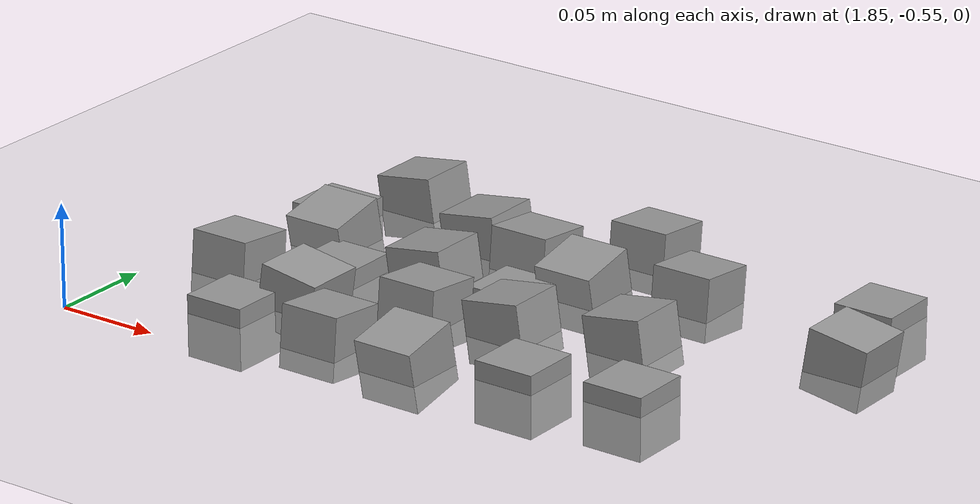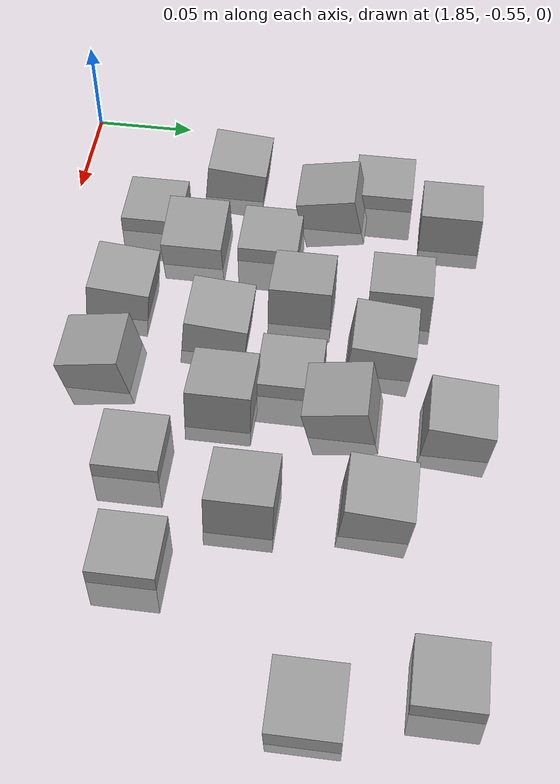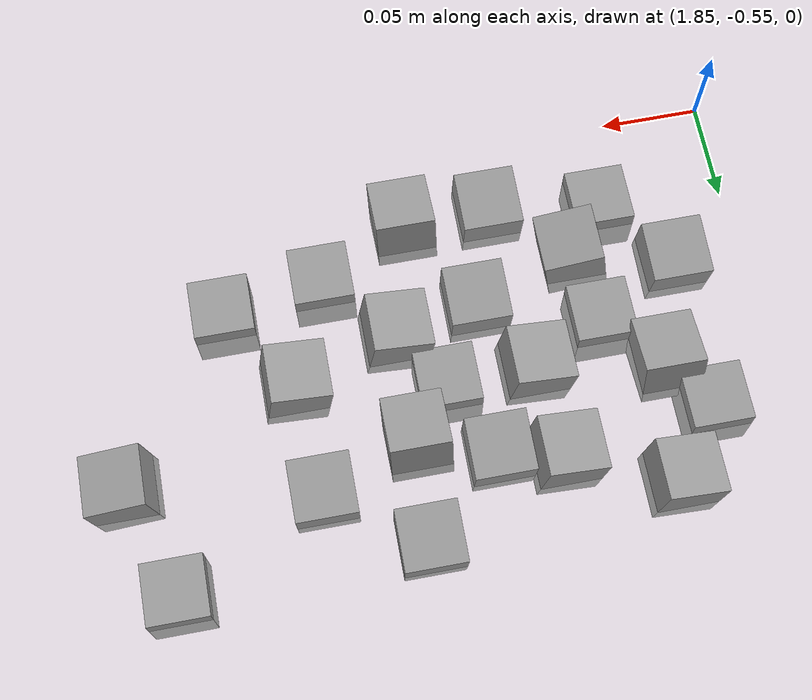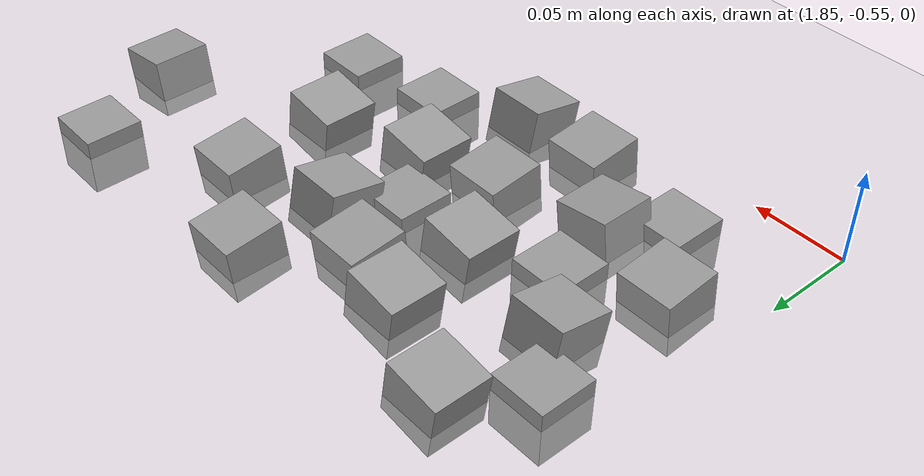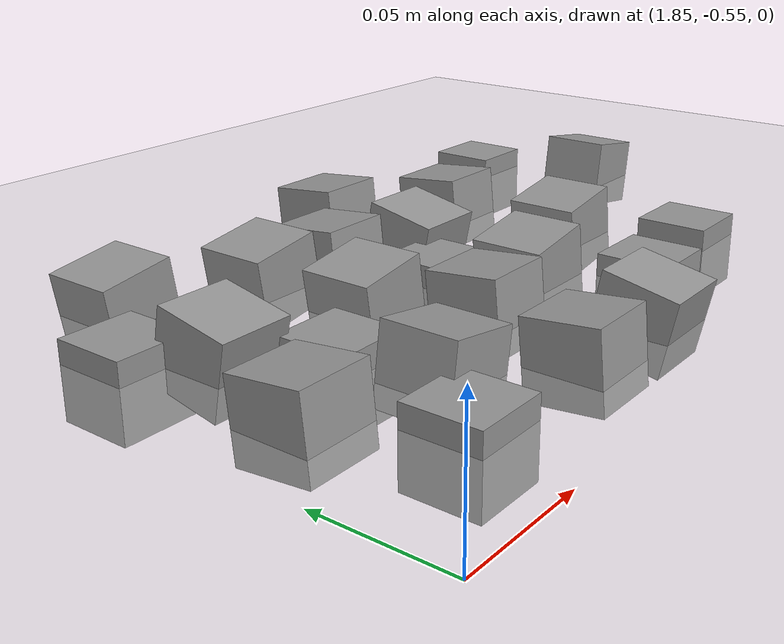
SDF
<sdf version="1.7">
 <world name="default">
  <model name="ground_plane">
   <static>1</static>
   <link name="link">
    <collision name="collision">
     <geometry><plane><normal>0 0 1</normal><size>100 100</size></plane></geometry>
     <surface><friction><ode><mu>100</mu><mu2>50</mu2></ode></friction></surface>
    </collision>
    <visual name="visual">
     <cast_shadows>0</cast_shadows>
     <geometry><plane><normal>0 0 1</normal><size>100 100</size></plane></geometry>
     <material>
      <script><uri>file://media/materials/scripts/gazebo.material</uri><name>Gazebo/Grey</name></script>
     </material>
    </visual>
   </link>
  </model>
  <model name="stone_road_2">
   <link name="link_0_clone_11">
    <inertial>
     <mass>1</mass>
     <inertia>
      <ixx>0.166667</ixx>
      <ixy>0</ixy>
      <ixz>0</ixz>
      <iyy>0.166667</iyy>
      <iyz>0</iyz>
      <izz>0.166667</izz>
     </inertia>
    </inertial>
    <pose>0.007758 0.071496 0.003778 0.2 -0 0</pose>
    <kinematic>1</kinematic>
    <visual name="visual">
     <geometry><box><size>0.03 0.03 0.03</size></box></geometry>
     <material>
      <lighting>1</lighting>
      <script><uri>file://media/materials/scripts/gazebo.material</uri><name>Gazebo/Grey</name></script>
      <shader type="pixel"><normal_map>__default__</normal_map></shader>
      <ambient>0.3 0.3 0.3 1</ambient>
      <diffuse>0.7 0.7 0.7 1</diffuse>
      <specular>0.01 0.01 0.01 1</specular>
      <emissive>0 0 0 1</emissive>
     </material>
    </visual>
    <collision name="collision">
     <geometry><box><size>0.03 0.03 0.03</size></box></geometry>
     <surface>
      <friction>
       <ode><mu>1</mu><mu2>1</mu2><fdir1>0 0 0</fdir1><slip1>0</slip1><slip2>0</slip2></ode>
       <torsional>
        <coefficient>1</coefficient>
        <patch_radius>0</patch_radius>
        <surface_radius>0</surface_radius>
        <use_patch_radius>1</use_patch_radius>
        <ode><slip>0</slip></ode>
       </torsional>
      </friction>
      <bounce><restitution_coefficient>0</restitution_coefficient><threshold>1e+06</threshold></bounce>
      <contact>
       <collide_without_contact>0</collide_without_contact>
       <collide_without_contact_bitmask>1</collide_without_contact_bitmask>
       <collide_bitmask>1</collide_bitmask>
       <ode>
        <soft_cfm>0</soft_cfm>
        <soft_erp>0.2</soft_erp>
        <kp>1e+13</kp>
        <kd>1</kd>
        <max_vel>0.01</max_vel>
        <min_depth>0</min_depth>
       </ode>
       <bullet>
        <split_impulse>1</split_impulse>
        <split_impulse_penetration_threshold>-0.01</split_impulse_penetration_threshold>
        <soft_cfm>0</soft_cfm>
        <soft_erp>0.2</soft_erp>
        <kp>1e+13</kp>
        <kd>1</kd>
       </bullet>
      </contact>
     </surface>
    </collision>
   </link>
   <link name="link_0_clone_2_clone_1">
    <inertial>
     <mass>1</mass>
     <inertia>
      <ixx>0.166667</ixx>
      <ixy>0</ixy>
      <ixz>0</ixz>
      <iyy>0.166667</iyy>
      <iyz>0</iyz>
      <izz>0.166667</izz>
     </inertia>
    </inertial>
    <pose>0.041447 0.006316 0.003778 0 0.15 0</pose>
    <kinematic>1</kinematic>
    <visual name="visual">
     <geometry><box><size>0.03 0.03 0.03</size></box></geometry>
     <material>
      <lighting>1</lighting>
      <script><uri>file://media/materials/scripts/gazebo.material</uri><name>Gazebo/Grey</name></script>
      <shader type="pixel"><normal_map>__default__</normal_map></shader>
      <ambient>0.3 0.3 0.3 1</ambient>
      <diffuse>0.7 0.7 0.7 1</diffuse>
      <specular>0.01 0.01 0.01 1</specular>
      <emissive>0 0 0 1</emissive>
     </material>
    </visual>
    <collision name="collision">
     <geometry><box><size>0.03 0.03 0.03</size></box></geometry>
     <surface>
      <friction>
       <ode><mu>1</mu><mu2>1</mu2><fdir1>0 0 0</fdir1><slip1>0</slip1><slip2>0</slip2></ode>
       <torsional>
        <coefficient>1</coefficient>
        <patch_radius>0</patch_radius>
        <surface_radius>0</surface_radius>
        <use_patch_radius>1</use_patch_radius>
        <ode><slip>0</slip></ode>
       </torsional>
      </friction>
      <bounce><restitution_coefficient>0</restitution_coefficient><threshold>1e+06</threshold></bounce>
      <contact>
       <collide_without_contact>0</collide_without_contact>
       <collide_without_contact_bitmask>1</collide_without_contact_bitmask>
       <collide_bitmask>1</collide_bitmask>
       <ode>
        <soft_cfm>0</soft_cfm>
        <soft_erp>0.2</soft_erp>
        <kp>1e+13</kp>
        <kd>1</kd>
        <max_vel>0.01</max_vel>
        <min_depth>0</min_depth>
       </ode>
       <bullet>
        <split_impulse>1</split_impulse>
        <split_impulse_penetration_threshold>-0.01</split_impulse_penetration_threshold>
        <soft_cfm>0</soft_cfm>
        <soft_erp>0.2</soft_erp>
        <kp>1e+13</kp>
        <kd>1</kd>
       </bullet>
      </contact>
     </surface>
    </collision>
   </link>
   <link name="link_0_clone_2_clone_2">
    <inertial>
     <mass>1</mass>
     <inertia>
      <ixx>0.166667</ixx>
      <ixy>0</ixy>
      <ixz>0</ixz>
      <iyy>0.166667</iyy>
      <iyz>0</iyz>
      <izz>0.166667</izz>
     </inertia>
    </inertial>
    <pose>0.066563 0.110568 0.003778 0 -0.15 0</pose>
    <kinematic>1</kinematic>
    <visual name="visual">
     <geometry><box><size>0.03 0.03 0.03</size></box></geometry>
     <material>
      <lighting>1</lighting>
      <script><uri>file://media/materials/scripts/gazebo.material</uri><name>Gazebo/Grey</name></script>
      <shader type="pixel"><normal_map>__default__</normal_map></shader>
      <ambient>0.3 0.3 0.3 1</ambient>
      <diffuse>0.7 0.7 0.7 1</diffuse>
      <specular>0.01 0.01 0.01 1</specular>
      <emissive>0 0 0 1</emissive>
     </material>
    </visual>
    <collision name="collision">
     <geometry><box><size>0.03 0.03 0.03</size></box></geometry>
     <surface>
      <friction>
       <ode><mu>1</mu><mu2>1</mu2><fdir1>0 0 0</fdir1><slip1>0</slip1><slip2>0</slip2></ode>
       <torsional>
        <coefficient>1</coefficient>
        <patch_radius>0</patch_radius>
        <surface_radius>0</surface_radius>
        <use_patch_radius>1</use_patch_radius>
        <ode><slip>0</slip></ode>
       </torsional>
      </friction>
      <bounce><restitution_coefficient>0</restitution_coefficient><threshold>1e+06</threshold></bounce>
      <contact>
       <collide_without_contact>0</collide_without_contact>
       <collide_without_contact_bitmask>1</collide_without_contact_bitmask>
       <collide_bitmask>1</collide_bitmask>
       <ode>
        <soft_cfm>0</soft_cfm>
        <soft_erp>0.2</soft_erp>
        <kp>1e+13</kp>
        <kd>1</kd>
        <max_vel>0.01</max_vel>
        <min_depth>0</min_depth>
       </ode>
       <bullet>
        <split_impulse>1</split_impulse>
        <split_impulse_penetration_threshold>-0.01</split_impulse_penetration_threshold>
        <soft_cfm>0</soft_cfm>
        <soft_erp>0.2</soft_erp>
        <kp>1e+13</kp>
        <kd>1</kd>
       </bullet>
      </contact>
     </surface>
    </collision>
   </link>
   <link name="link_0_clone_2_clone_2_clone">
    <inertial>
     <mass>1</mass>
     <inertia>
      <ixx>0.166667</ixx>
      <ixy>0</ixy>
      <ixz>0</ixz>
      <iyy>0.166667</iyy>
      <iyz>0</iyz>
      <izz>0.166667</izz>
     </inertia>
    </inertial>
    <pose>0.189059 0.051135 0.003778 0 -0.15 0</pose>
    <kinematic>1</kinematic>
    <visual name="visual">
     <geometry><box><size>0.03 0.03 0.03</size></box></geometry>
     <material>
      <lighting>1</lighting>
      <script><uri>file://media/materials/scripts/gazebo.material</uri><name>Gazebo/Grey</name></script>
      <shader type="pixel"><normal_map>__default__</normal_map></shader>
      <ambient>0.3 0.3 0.3 1</ambient>
      <diffuse>0.7 0.7 0.7 1</diffuse>
      <specular>0.01 0.01 0.01 1</specular>
      <emissive>0 0 0 1</emissive>
     </material>
    </visual>
    <collision name="collision">
     <geometry><box><size>0.03 0.03 0.03</size></box></geometry>
     <surface>
      <friction>
       <ode><mu>1</mu><mu2>1</mu2><fdir1>0 0 0</fdir1><slip1>0</slip1><slip2>0</slip2></ode>
       <torsional>
        <coefficient>1</coefficient>
        <patch_radius>0</patch_radius>
        <surface_radius>0</surface_radius>
        <use_patch_radius>1</use_patch_radius>
        <ode><slip>0</slip></ode>
       </torsional>
      </friction>
      <bounce><restitution_coefficient>0</restitution_coefficient><threshold>1e+06</threshold></bounce>
      <contact>
       <collide_without_contact>0</collide_without_contact>
       <collide_without_contact_bitmask>1</collide_without_contact_bitmask>
       <collide_bitmask>1</collide_bitmask>
       <ode>
        <soft_cfm>0</soft_cfm>
        <soft_erp>0.2</soft_erp>
        <kp>1e+13</kp>
        <kd>1</kd>
        <max_vel>0.01</max_vel>
        <min_depth>0</min_depth>
       </ode>
       <bullet>
        <split_impulse>1</split_impulse>
        <split_impulse_penetration_threshold>-0.01</split_impulse_penetration_threshold>
        <soft_cfm>0</soft_cfm>
        <soft_erp>0.2</soft_erp>
        <kp>1e+13</kp>
        <kd>1</kd>
       </bullet>
      </contact>
     </surface>
    </collision>
   </link>
   <link name="link_0_clone_2_clone_2_clone_13">
    <inertial>
     <mass>1</mass>
     <inertia>
      <ixx>0.166667</ixx>
      <ixy>0</ixy>
      <ixz>0</ixz>
      <iyy>0.166667</iyy>
      <iyz>0</iyz>
      <izz>0.166667</izz>
     </inertia>
    </inertial>
    <pose>0.014407 0.13189 0.003778 0 -0.15 0</pose>
    <kinematic>1</kinematic>
    <visual name="visual">
     <geometry><box><size>0.03 0.03 0.03</size></box></geometry>
     <material>
      <lighting>1</lighting>
      <script><uri>file://media/materials/scripts/gazebo.material</uri><name>Gazebo/Grey</name></script>
      <shader type="pixel"><normal_map>__default__</normal_map></shader>
      <ambient>0.3 0.3 0.3 1</ambient>
      <diffuse>0.7 0.7 0.7 1</diffuse>
      <specular>0.01 0.01 0.01 1</specular>
      <emissive>0 0 0 1</emissive>
     </material>
    </visual>
    <collision name="collision">
     <geometry><box><size>0.03 0.03 0.03</size></box></geometry>
     <surface>
      <friction>
       <ode><mu>1</mu><mu2>1</mu2><fdir1>0 0 0</fdir1><slip1>0</slip1><slip2>0</slip2></ode>
       <torsional>
        <coefficient>1</coefficient>
        <patch_radius>0</patch_radius>
        <surface_radius>0</surface_radius>
        <use_patch_radius>1</use_patch_radius>
        <ode><slip>0</slip></ode>
       </torsional>
      </friction>
      <bounce><restitution_coefficient>0</restitution_coefficient><threshold>1e+06</threshold></bounce>
      <contact>
       <collide_without_contact>0</collide_without_contact>
       <collide_without_contact_bitmask>1</collide_without_contact_bitmask>
       <collide_bitmask>1</collide_bitmask>
       <ode>
        <soft_cfm>0</soft_cfm>
        <soft_erp>0.2</soft_erp>
        <kp>1e+13</kp>
        <kd>1</kd>
        <max_vel>0.01</max_vel>
        <min_depth>0</min_depth>
       </ode>
       <bullet>
        <split_impulse>1</split_impulse>
        <split_impulse_penetration_threshold>-0.01</split_impulse_penetration_threshold>
        <soft_cfm>0</soft_cfm>
        <soft_erp>0.2</soft_erp>
        <kp>1e+13</kp>
        <kd>1</kd>
       </bullet>
      </contact>
     </surface>
    </collision>
   </link>
   <link name="link_0_clone_2_clone_2_clone_13_clone">
    <inertial>
     <mass>1</mass>
     <inertia>
      <ixx>0.166667</ixx>
      <ixy>0</ixy>
      <ixz>0</ixz>
      <iyy>0.166667</iyy>
      <iyz>0</iyz>
      <izz>0.166667</izz>
     </inertia>
    </inertial>
    <pose>0.138846 0.140956 0.003778 -0.1 0 0</pose>
    <kinematic>1</kinematic>
    <visual name="visual">
     <geometry><box><size>0.03 0.03 0.03</size></box></geometry>
     <material>
      <lighting>1</lighting>
      <script><uri>file://media/materials/scripts/gazebo.material</uri><name>Gazebo/Grey</name></script>
      <shader type="pixel"><normal_map>__default__</normal_map></shader>
      <ambient>0.3 0.3 0.3 1</ambient>
      <diffuse>0.7 0.7 0.7 1</diffuse>
      <specular>0.01 0.01 0.01 1</specular>
      <emissive>0 0 0 1</emissive>
     </material>
    </visual>
    <collision name="collision">
     <geometry><box><size>0.03 0.03 0.03</size></box></geometry>
     <surface>
      <friction>
       <ode><mu>1</mu><mu2>1</mu2><fdir1>0 0 0</fdir1><slip1>0</slip1><slip2>0</slip2></ode>
       <torsional>
        <coefficient>1</coefficient>
        <patch_radius>0</patch_radius>
        <surface_radius>0</surface_radius>
        <use_patch_radius>1</use_patch_radius>
        <ode><slip>0</slip></ode>
       </torsional>
      </friction>
      <bounce><restitution_coefficient>0</restitution_coefficient><threshold>1e+06</threshold></bounce>
      <contact>
       <collide_without_contact>0</collide_without_contact>
       <collide_without_contact_bitmask>1</collide_without_contact_bitmask>
       <collide_bitmask>1</collide_bitmask>
       <ode>
        <soft_cfm>0</soft_cfm>
        <soft_erp>0.2</soft_erp>
        <kp>1e+13</kp>
        <kd>1</kd>
        <max_vel>0.01</max_vel>
        <min_depth>0</min_depth>
       </ode>
       <bullet>
        <split_impulse>1</split_impulse>
        <split_impulse_penetration_threshold>-0.01</split_impulse_penetration_threshold>
        <soft_cfm>0</soft_cfm>
        <soft_erp>0.2</soft_erp>
        <kp>1e+13</kp>
        <kd>1</kd>
       </bullet>
      </contact>
     </surface>
    </collision>
   </link>
   <link name="link_0_clone_2_clone_2_clone_13_clone_clone">
    <inertial>
     <mass>1</mass>
     <inertia>
      <ixx>0.166667</ixx>
      <ixy>0</ixy>
      <ixz>0</ixz>
      <iyy>0.166667</iyy>
      <iyz>0</iyz>
      <izz>0.166667</izz>
     </inertia>
    </inertial>
    <pose>0.184456 0.108712 0.003778 -0.1 0 0</pose>
    <kinematic>1</kinematic>
    <visual name="visual">
     <geometry><box><size>0.03 0.03 0.03</size></box></geometry>
     <material>
      <lighting>1</lighting>
      <script><uri>file://media/materials/scripts/gazebo.material</uri><name>Gazebo/Grey</name></script>
      <shader type="pixel"><normal_map>__default__</normal_map></shader>
      <ambient>0.3 0.3 0.3 1</ambient>
      <diffuse>0.7 0.7 0.7 1</diffuse>
      <specular>0.01 0.01 0.01 1</specular>
      <emissive>0 0 0 1</emissive>
     </material>
    </visual>
    <collision name="collision">
     <geometry><box><size>0.03 0.03 0.03</size></box></geometry>
     <surface>
      <friction>
       <ode><mu>1</mu><mu2>1</mu2><fdir1>0 0 0</fdir1><slip1>0</slip1><slip2>0</slip2></ode>
       <torsional>
        <coefficient>1</coefficient>
        <patch_radius>0</patch_radius>
        <surface_radius>0</surface_radius>
        <use_patch_radius>1</use_patch_radius>
        <ode><slip>0</slip></ode>
       </torsional>
      </friction>
      <bounce><restitution_coefficient>0</restitution_coefficient><threshold>1e+06</threshold></bounce>
      <contact>
       <collide_without_contact>0</collide_without_contact>
       <collide_without_contact_bitmask>1</collide_without_contact_bitmask>
       <collide_bitmask>1</collide_bitmask>
       <ode>
        <soft_cfm>0</soft_cfm>
        <soft_erp>0.2</soft_erp>
        <kp>1e+13</kp>
        <kd>1</kd>
        <max_vel>0.01</max_vel>
        <min_depth>0</min_depth>
       </ode>
       <bullet>
        <split_impulse>1</split_impulse>
        <split_impulse_penetration_threshold>-0.01</split_impulse_penetration_threshold>
        <soft_cfm>0</soft_cfm>
        <soft_erp>0.2</soft_erp>
        <kp>1e+13</kp>
        <kd>1</kd>
       </bullet>
      </contact>
     </surface>
    </collision>
   </link>
   <link name="link_0_clone_2_clone_2_clone_13_clone_clone_0">
    <inertial>
     <mass>1</mass>
     <inertia>
      <ixx>0.166667</ixx>
      <ixy>0</ixy>
      <ixz>0</ixz>
      <iyy>0.166667</iyy>
      <iyz>0</iyz>
      <izz>0.166667</izz>
     </inertia>
    </inertial>
    <pose>0.094072 0.02539 0.003778 -0.1 0 0</pose>
    <kinematic>1</kinematic>
    <visual name="visual">
     <geometry><box><size>0.03 0.03 0.03</size></box></geometry>
     <material>
      <lighting>1</lighting>
      <script><uri>file://media/materials/scripts/gazebo.material</uri><name>Gazebo/Grey</name></script>
      <shader type="pixel"><normal_map>__default__</normal_map></shader>
      <ambient>0.3 0.3 0.3 1</ambient>
      <diffuse>0.7 0.7 0.7 1</diffuse>
      <specular>0.01 0.01 0.01 1</specular>
      <emissive>0 0 0 1</emissive>
     </material>
    </visual>
    <collision name="collision">
     <geometry><box><size>0.03 0.03 0.03</size></box></geometry>
     <surface>
      <friction>
       <ode><mu>1</mu><mu2>1</mu2><fdir1>0 0 0</fdir1><slip1>0</slip1><slip2>0</slip2></ode>
       <torsional>
        <coefficient>1</coefficient>
        <patch_radius>0</patch_radius>
        <surface_radius>0</surface_radius>
        <use_patch_radius>1</use_patch_radius>
        <ode><slip>0</slip></ode>
       </torsional>
      </friction>
      <bounce><restitution_coefficient>0</restitution_coefficient><threshold>1e+06</threshold></bounce>
      <contact>
       <collide_without_contact>0</collide_without_contact>
       <collide_without_contact_bitmask>1</collide_without_contact_bitmask>
       <collide_bitmask>1</collide_bitmask>
       <ode>
        <soft_cfm>0</soft_cfm>
        <soft_erp>0.2</soft_erp>
        <kp>1e+13</kp>
        <kd>1</kd>
        <max_vel>0.01</max_vel>
        <min_depth>0</min_depth>
       </ode>
       <bullet>
        <split_impulse>1</split_impulse>
        <split_impulse_penetration_threshold>-0.01</split_impulse_penetration_threshold>
        <soft_cfm>0</soft_cfm>
        <soft_erp>0.2</soft_erp>
        <kp>1e+13</kp>
        <kd>1</kd>
       </bullet>
      </contact>
     </surface>
    </collision>
   </link>
   <link name="link_0_clone_2_clone_2_clone_13_clone_clone_1">
    <inertial>
     <mass>1</mass>
     <inertia>
      <ixx>0.166667</ixx>
      <ixy>0</ixy>
      <ixz>0</ixz>
      <iyy>0.166667</iyy>
      <iyz>0</iyz>
      <izz>0.166667</izz>
     </inertia>
    </inertial>
    <pose>0.098415 0.103772 0.003778 -0.1 0 0</pose>
    <kinematic>1</kinematic>
    <visual name="visual">
     <geometry><box><size>0.03 0.03 0.03</size></box></geometry>
     <material>
      <lighting>1</lighting>
      <script><uri>file://media/materials/scripts/gazebo.material</uri><name>Gazebo/Grey</name></script>
      <shader type="pixel"><normal_map>__default__</normal_map></shader>
      <ambient>0.3 0.3 0.3 1</ambient>
      <diffuse>0.7 0.7 0.7 1</diffuse>
      <specular>0.01 0.01 0.01 1</specular>
      <emissive>0 0 0 1</emissive>
     </material>
    </visual>
    <collision name="collision">
     <geometry><box><size>0.03 0.03 0.03</size></box></geometry>
     <surface>
      <friction>
       <ode><mu>1</mu><mu2>1</mu2><fdir1>0 0 0</fdir1><slip1>0</slip1><slip2>0</slip2></ode>
       <torsional>
        <coefficient>1</coefficient>
        <patch_radius>0</patch_radius>
        <surface_radius>0</surface_radius>
        <use_patch_radius>1</use_patch_radius>
        <ode><slip>0</slip></ode>
       </torsional>
      </friction>
      <bounce><restitution_coefficient>0</restitution_coefficient><threshold>1e+06</threshold></bounce>
      <contact>
       <collide_without_contact>0</collide_without_contact>
       <collide_without_contact_bitmask>1</collide_without_contact_bitmask>
       <collide_bitmask>1</collide_bitmask>
       <ode>
        <soft_cfm>0</soft_cfm>
        <soft_erp>0.2</soft_erp>
        <kp>1e+13</kp>
        <kd>1</kd>
        <max_vel>0.01</max_vel>
        <min_depth>0</min_depth>
       </ode>
       <bullet>
        <split_impulse>1</split_impulse>
        <split_impulse_penetration_threshold>-0.01</split_impulse_penetration_threshold>
        <soft_cfm>0</soft_cfm>
        <soft_erp>0.2</soft_erp>
        <kp>1e+13</kp>
        <kd>1</kd>
       </bullet>
      </contact>
     </surface>
    </collision>
   </link>
   <link name="link_0_clone_2_clone_2_clone_13_clone_clone_16_clone_0">
    <inertial>
     <mass>1</mass>
     <inertia>
      <ixx>0.166667</ixx>
      <ixy>0</ixy>
      <ixz>0</ixz>
      <iyy>0.166667</iyy>
      <iyz>0</iyz>
      <izz>0.166667</izz>
     </inertia>
    </inertial>
    <pose>-0.010782 0.09679 -0.006222 0 -0 0</pose>
    <kinematic>1</kinematic>
    <visual name="visual">
     <geometry><box><size>0.03 0.03 0.03</size></box></geometry>
     <material>
      <lighting>1</lighting>
      <script><uri>file://media/materials/scripts/gazebo.material</uri><name>Gazebo/Grey</name></script>
      <shader type="pixel"><normal_map>__default__</normal_map></shader>
      <ambient>0.3 0.3 0.3 1</ambient>
      <diffuse>0.7 0.7 0.7 1</diffuse>
      <specular>0.01 0.01 0.01 1</specular>
      <emissive>0 0 0 1</emissive>
     </material>
    </visual>
    <collision name="collision">
     <geometry><box><size>0.03 0.03 0.03</size></box></geometry>
     <surface>
      <friction>
       <ode><mu>1</mu><mu2>1</mu2><fdir1>0 0 0</fdir1><slip1>0</slip1><slip2>0</slip2></ode>
       <torsional>
        <coefficient>1</coefficient>
        <patch_radius>0</patch_radius>
        <surface_radius>0</surface_radius>
        <use_patch_radius>1</use_patch_radius>
        <ode><slip>0</slip></ode>
       </torsional>
      </friction>
      <bounce><restitution_coefficient>0</restitution_coefficient><threshold>1e+06</threshold></bounce>
      <contact>
       <collide_without_contact>0</collide_without_contact>
       <collide_without_contact_bitmask>1</collide_without_contact_bitmask>
       <collide_bitmask>1</collide_bitmask>
       <ode>
        <soft_cfm>0</soft_cfm>
        <soft_erp>0.2</soft_erp>
        <kp>1e+13</kp>
        <kd>1</kd>
        <max_vel>0.01</max_vel>
        <min_depth>0</min_depth>
       </ode>
       <bullet>
        <split_impulse>1</split_impulse>
        <split_impulse_penetration_threshold>-0.01</split_impulse_penetration_threshold>
        <soft_cfm>0</soft_cfm>
        <soft_erp>0.2</soft_erp>
        <kp>1e+13</kp>
        <kd>1</kd>
       </bullet>
      </contact>
     </surface>
    </collision>
   </link>
   <link name="link_0_clone_2_clone_2_clone_13_clone_clone_16_clone_1">
    <inertial>
     <mass>1</mass>
     <inertia>
      <ixx>0.166667</ixx>
      <ixy>0</ixy>
      <ixz>0</ixz>
      <iyy>0.166667</iyy>
      <iyz>0</iyz>
      <izz>0.166667</izz>
     </inertia>
    </inertial>
    <pose>0.033787 0.042837 -0.006222 0 -0 0</pose>
    <kinematic>1</kinematic>
    <visual name="visual">
     <geometry><box><size>0.03 0.03 0.03</size></box></geometry>
     <material>
      <lighting>1</lighting>
      <script><uri>file://media/materials/scripts/gazebo.material</uri><name>Gazebo/Grey</name></script>
      <shader type="pixel"><normal_map>__default__</normal_map></shader>
      <ambient>0.3 0.3 0.3 1</ambient>
      <diffuse>0.7 0.7 0.7 1</diffuse>
      <specular>0.01 0.01 0.01 1</specular>
      <emissive>0 0 0 1</emissive>
     </material>
    </visual>
    <collision name="collision">
     <geometry><box><size>0.03 0.03 0.03</size></box></geometry>
     <surface>
      <friction>
       <ode><mu>1</mu><mu2>1</mu2><fdir1>0 0 0</fdir1><slip1>0</slip1><slip2>0</slip2></ode>
       <torsional>
        <coefficient>1</coefficient>
        <patch_radius>0</patch_radius>
        <surface_radius>0</surface_radius>
        <use_patch_radius>1</use_patch_radius>
        <ode><slip>0</slip></ode>
       </torsional>
      </friction>
      <bounce><restitution_coefficient>0</restitution_coefficient><threshold>1e+06</threshold></bounce>
      <contact>
       <collide_without_contact>0</collide_without_contact>
       <collide_without_contact_bitmask>1</collide_without_contact_bitmask>
       <collide_bitmask>1</collide_bitmask>
       <ode>
        <soft_cfm>0</soft_cfm>
        <soft_erp>0.2</soft_erp>
        <kp>1e+13</kp>
        <kd>1</kd>
        <max_vel>0.01</max_vel>
        <min_depth>0</min_depth>
       </ode>
       <bullet>
        <split_impulse>1</split_impulse>
        <split_impulse_penetration_threshold>-0.01</split_impulse_penetration_threshold>
        <soft_cfm>0</soft_cfm>
        <soft_erp>0.2</soft_erp>
        <kp>1e+13</kp>
        <kd>1</kd>
       </bullet>
      </contact>
     </surface>
    </collision>
   </link>
   <link name="link_0_clone_2_clone_2_clone_13_clone_clone_16_clone_13">
    <inertial>
     <mass>1</mass>
     <inertia>
      <ixx>0.166667</ixx>
      <ixy>0</ixy>
      <ixz>0</ixz>
      <iyy>0.166667</iyy>
      <iyz>0</iyz>
      <izz>0.166667</izz>
     </inertia>
    </inertial>
    <pose>0.168013 -0.00203 -0.006222 0 -0 0</pose>
    <kinematic>1</kinematic>
    <visual name="visual">
     <geometry><box><size>0.03 0.03 0.03</size></box></geometry>
     <material>
      <lighting>1</lighting>
      <script><uri>file://media/materials/scripts/gazebo.material</uri><name>Gazebo/Grey</name></script>
      <shader type="pixel"><normal_map>__default__</normal_map></shader>
      <ambient>0.3 0.3 0.3 1</ambient>
      <diffuse>0.7 0.7 0.7 1</diffuse>
      <specular>0.01 0.01 0.01 1</specular>
      <emissive>0 0 0 1</emissive>
     </material>
    </visual>
    <collision name="collision">
     <geometry><box><size>0.03 0.03 0.03</size></box></geometry>
     <surface>
      <friction>
       <ode><mu>1</mu><mu2>1</mu2><fdir1>0 0 0</fdir1><slip1>0</slip1><slip2>0</slip2></ode>
       <torsional>
        <coefficient>1</coefficient>
        <patch_radius>0</patch_radius>
        <surface_radius>0</surface_radius>
        <use_patch_radius>1</use_patch_radius>
        <ode><slip>0</slip></ode>
       </torsional>
      </friction>
      <bounce><restitution_coefficient>0</restitution_coefficient><threshold>1e+06</threshold></bounce>
      <contact>
       <collide_without_contact>0</collide_without_contact>
       <collide_without_contact_bitmask>1</collide_without_contact_bitmask>
       <collide_bitmask>1</collide_bitmask>
       <ode>
        <soft_cfm>0</soft_cfm>
        <soft_erp>0.2</soft_erp>
        <kp>1e+13</kp>
        <kd>1</kd>
        <max_vel>0.01</max_vel>
        <min_depth>0</min_depth>
       </ode>
       <bullet>
        <split_impulse>1</split_impulse>
        <split_impulse_penetration_threshold>-0.01</split_impulse_penetration_threshold>
        <soft_cfm>0</soft_cfm>
        <soft_erp>0.2</soft_erp>
        <kp>1e+13</kp>
        <kd>1</kd>
       </bullet>
      </contact>
     </surface>
    </collision>
   </link>
   <link name="link_0_clone_2_clone_2_clone_13_clone_clone_16_clone_19">
    <inertial>
     <mass>1</mass>
     <inertia>
      <ixx>0.166667</ixx>
      <ixy>0</ixy>
      <ixz>0</ixz>
      <iyy>0.166667</iyy>
      <iyz>0</iyz>
      <izz>0.166667</izz>
     </inertia>
    </inertial>
    <pose>0.219442 0.006622 -0.006222 0 -0 0</pose>
    <kinematic>1</kinematic>
    <visual name="visual">
     <geometry><box><size>0.03 0.03 0.03</size></box></geometry>
     <material>
      <lighting>1</lighting>
      <script><uri>file://media/materials/scripts/gazebo.material</uri><name>Gazebo/Grey</name></script>
      <shader type="pixel"><normal_map>__default__</normal_map></shader>
      <ambient>0.3 0.3 0.3 1</ambient>
      <diffuse>0.7 0.7 0.7 1</diffuse>
      <specular>0.01 0.01 0.01 1</specular>
      <emissive>0 0 0 1</emissive>
     </material>
    </visual>
    <collision name="collision">
     <geometry><box><size>0.03 0.03 0.03</size></box></geometry>
     <surface>
      <friction>
       <ode><mu>1</mu><mu2>1</mu2><fdir1>0 0 0</fdir1><slip1>0</slip1><slip2>0</slip2></ode>
       <torsional>
        <coefficient>1</coefficient>
        <patch_radius>0</patch_radius>
        <surface_radius>0</surface_radius>
        <use_patch_radius>1</use_patch_radius>
        <ode><slip>0</slip></ode>
       </torsional>
      </friction>
      <bounce><restitution_coefficient>0</restitution_coefficient><threshold>1e+06</threshold></bounce>
      <contact>
       <collide_without_contact>0</collide_without_contact>
       <collide_without_contact_bitmask>1</collide_without_contact_bitmask>
       <collide_bitmask>1</collide_bitmask>
       <ode>
        <soft_cfm>0</soft_cfm>
        <soft_erp>0.2</soft_erp>
        <kp>1e+13</kp>
        <kd>1</kd>
        <max_vel>0.01</max_vel>
        <min_depth>0</min_depth>
       </ode>
       <bullet>
        <split_impulse>1</split_impulse>
        <split_impulse_penetration_threshold>-0.01</split_impulse_penetration_threshold>
        <soft_cfm>0</soft_cfm>
        <soft_erp>0.2</soft_erp>
        <kp>1e+13</kp>
        <kd>1</kd>
       </bullet>
      </contact>
     </surface>
    </collision>
   </link>
   <link name="link_0_clone_2_clone_2_clone_13_clone_clone_16_clone_20">
    <inertial>
     <mass>1</mass>
     <inertia>
      <ixx>0.166667</ixx>
      <ixy>0</ixy>
      <ixz>0</ixz>
      <iyy>0.166667</iyy>
      <iyz>0</iyz>
      <izz>0.166667</izz>
     </inertia>
    </inertial>
    <pose>0.115763 0.063063 -0.006222 0 -0 0</pose>
    <kinematic>1</kinematic>
    <visual name="visual">
     <geometry><box><size>0.03 0.03 0.03</size></box></geometry>
     <material>
      <lighting>1</lighting>
      <script><uri>file://media/materials/scripts/gazebo.material</uri><name>Gazebo/Grey</name></script>
      <shader type="pixel"><normal_map>__default__</normal_map></shader>
      <ambient>0.3 0.3 0.3 1</ambient>
      <diffuse>0.7 0.7 0.7 1</diffuse>
      <specular>0.01 0.01 0.01 1</specular>
      <emissive>0 0 0 1</emissive>
     </material>
    </visual>
    <collision name="collision">
     <geometry><box><size>0.03 0.03 0.03</size></box></geometry>
     <surface>
      <friction>
       <ode><mu>1</mu><mu2>1</mu2><fdir1>0 0 0</fdir1><slip1>0</slip1><slip2>0</slip2></ode>
       <torsional>
        <coefficient>1</coefficient>
        <patch_radius>0</patch_radius>
        <surface_radius>0</surface_radius>
        <use_patch_radius>1</use_patch_radius>
        <ode><slip>0</slip></ode>
       </torsional>
      </friction>
      <bounce><restitution_coefficient>0</restitution_coefficient><threshold>1e+06</threshold></bounce>
      <contact>
       <collide_without_contact>0</collide_without_contact>
       <collide_without_contact_bitmask>1</collide_without_contact_bitmask>
       <collide_bitmask>1</collide_bitmask>
       <ode>
        <soft_cfm>0</soft_cfm>
        <soft_erp>0.2</soft_erp>
        <kp>1e+13</kp>
        <kd>1</kd>
        <max_vel>0.01</max_vel>
        <min_depth>0</min_depth>
       </ode>
       <bullet>
        <split_impulse>1</split_impulse>
        <split_impulse_penetration_threshold>-0.01</split_impulse_penetration_threshold>
        <soft_cfm>0</soft_cfm>
        <soft_erp>0.2</soft_erp>
        <kp>1e+13</kp>
        <kd>1</kd>
       </bullet>
      </contact>
     </surface>
    </collision>
   </link>
   <link name="link_0_clone_2_clone_2_clone_13_clone_clone_16_clone_6">
    <inertial>
     <mass>1</mass>
     <inertia>
      <ixx>0.166667</ixx>
      <ixy>0</ixy>
      <ixz>0</ixz>
      <iyy>0.166667</iyy>
      <iyz>0</iyz>
      <izz>0.166667</izz>
     </inertia>
    </inertial>
    <pose>0.020774 -0.018727 -0.006222 0 -0 0</pose>
    <kinematic>1</kinematic>
    <visual name="visual">
     <geometry><box><size>0.03 0.03 0.03</size></box></geometry>
     <material>
      <lighting>1</lighting>
      <script><uri>file://media/materials/scripts/gazebo.material</uri><name>Gazebo/Grey</name></script>
      <shader type="pixel"><normal_map>__default__</normal_map></shader>
      <ambient>0.3 0.3 0.3 1</ambient>
      <diffuse>0.7 0.7 0.7 1</diffuse>
      <specular>0.01 0.01 0.01 1</specular>
      <emissive>0 0 0 1</emissive>
     </material>
    </visual>
    <collision name="collision">
     <geometry><box><size>0.03 0.03 0.03</size></box></geometry>
     <surface>
      <friction>
       <ode><mu>1</mu><mu2>1</mu2><fdir1>0 0 0</fdir1><slip1>0</slip1><slip2>0</slip2></ode>
       <torsional>
        <coefficient>1</coefficient>
        <patch_radius>0</patch_radius>
        <surface_radius>0</surface_radius>
        <use_patch_radius>1</use_patch_radius>
        <ode><slip>0</slip></ode>
       </torsional>
      </friction>
      <bounce><restitution_coefficient>0</restitution_coefficient><threshold>1e+06</threshold></bounce>
      <contact>
       <collide_without_contact>0</collide_without_contact>
       <collide_without_contact_bitmask>1</collide_without_contact_bitmask>
       <collide_bitmask>1</collide_bitmask>
       <ode>
        <soft_cfm>0</soft_cfm>
        <soft_erp>0.2</soft_erp>
        <kp>1e+13</kp>
        <kd>1</kd>
        <max_vel>0.01</max_vel>
        <min_depth>0</min_depth>
       </ode>
       <bullet>
        <split_impulse>1</split_impulse>
        <split_impulse_penetration_threshold>-0.01</split_impulse_penetration_threshold>
        <soft_cfm>0</soft_cfm>
        <soft_erp>0.2</soft_erp>
        <kp>1e+13</kp>
        <kd>1</kd>
       </bullet>
      </contact>
     </surface>
    </collision>
   </link>
   <link name="link_0_clone_2_clone_2_clone_13_clone_clone_3">
    <inertial>
     <mass>1</mass>
     <inertia>
      <ixx>0.166667</ixx>
      <ixy>0</ixy>
      <ixz>0</ixz>
      <iyy>0.166667</iyy>
      <iyz>0</iyz>
      <izz>0.166667</izz>
     </inertia>
    </inertial>
    <pose>-0.008408 0.020239 0.003778 -0.1 0 0</pose>
    <kinematic>1</kinematic>
    <visual name="visual">
     <geometry><box><size>0.03 0.03 0.03</size></box></geometry>
     <material>
      <lighting>1</lighting>
      <script><uri>file://media/materials/scripts/gazebo.material</uri><name>Gazebo/Grey</name></script>
      <shader type="pixel"><normal_map>__default__</normal_map></shader>
      <ambient>0.3 0.3 0.3 1</ambient>
      <diffuse>0.7 0.7 0.7 1</diffuse>
      <specular>0.01 0.01 0.01 1</specular>
      <emissive>0 0 0 1</emissive>
     </material>
    </visual>
    <collision name="collision">
     <geometry><box><size>0.03 0.03 0.03</size></box></geometry>
     <surface>
      <friction>
       <ode><mu>1</mu><mu2>1</mu2><fdir1>0 0 0</fdir1><slip1>0</slip1><slip2>0</slip2></ode>
       <torsional>
        <coefficient>1</coefficient>
        <patch_radius>0</patch_radius>
        <surface_radius>0</surface_radius>
        <use_patch_radius>1</use_patch_radius>
        <ode><slip>0</slip></ode>
       </torsional>
      </friction>
      <bounce><restitution_coefficient>0</restitution_coefficient><threshold>1e+06</threshold></bounce>
      <contact>
       <collide_without_contact>0</collide_without_contact>
       <collide_without_contact_bitmask>1</collide_without_contact_bitmask>
       <collide_bitmask>1</collide_bitmask>
       <ode>
        <soft_cfm>0</soft_cfm>
        <soft_erp>0.2</soft_erp>
        <kp>1e+13</kp>
        <kd>1</kd>
        <max_vel>0.01</max_vel>
        <min_depth>0</min_depth>
       </ode>
       <bullet>
        <split_impulse>1</split_impulse>
        <split_impulse_penetration_threshold>-0.01</split_impulse_penetration_threshold>
        <soft_cfm>0</soft_cfm>
        <soft_erp>0.2</soft_erp>
        <kp>1e+13</kp>
        <kd>1</kd>
       </bullet>
      </contact>
     </surface>
    </collision>
   </link>
   <link name="link_0_clone_2_clone_2_clone_13_clone_clone_4">
    <inertial>
     <mass>1</mass>
     <inertia>
      <ixx>0.166667</ixx>
      <ixy>0</ixy>
      <ixz>0</ixz>
      <iyy>0.166667</iyy>
      <iyz>0</iyz>
      <izz>0.166667</izz>
     </inertia>
    </inertial>
    <pose>0.078198 -0.024053 0.003778 -0.1 0 0</pose>
    <kinematic>1</kinematic>
    <visual name="visual">
     <geometry><box><size>0.03 0.03 0.03</size></box></geometry>
     <material>
      <lighting>1</lighting>
      <script><uri>file://media/materials/scripts/gazebo.material</uri><name>Gazebo/Grey</name></script>
      <shader type="pixel"><normal_map>__default__</normal_map></shader>
      <ambient>0.3 0.3 0.3 1</ambient>
      <diffuse>0.7 0.7 0.7 1</diffuse>
      <specular>0.01 0.01 0.01 1</specular>
      <emissive>0 0 0 1</emissive>
     </material>
    </visual>
    <collision name="collision">
     <geometry><box><size>0.03 0.03 0.03</size></box></geometry>
     <surface>
      <friction>
       <ode><mu>1</mu><mu2>1</mu2><fdir1>0 0 0</fdir1><slip1>0</slip1><slip2>0</slip2></ode>
       <torsional>
        <coefficient>1</coefficient>
        <patch_radius>0</patch_radius>
        <surface_radius>0</surface_radius>
        <use_patch_radius>1</use_patch_radius>
        <ode><slip>0</slip></ode>
       </torsional>
      </friction>
      <bounce><restitution_coefficient>0</restitution_coefficient><threshold>1e+06</threshold></bounce>
      <contact>
       <collide_without_contact>0</collide_without_contact>
       <collide_without_contact_bitmask>1</collide_without_contact_bitmask>
       <collide_bitmask>1</collide_bitmask>
       <ode>
        <soft_cfm>0</soft_cfm>
        <soft_erp>0.2</soft_erp>
        <kp>1e+13</kp>
        <kd>1</kd>
        <max_vel>0.01</max_vel>
        <min_depth>0</min_depth>
       </ode>
       <bullet>
        <split_impulse>1</split_impulse>
        <split_impulse_penetration_threshold>-0.01</split_impulse_penetration_threshold>
        <soft_cfm>0</soft_cfm>
        <soft_erp>0.2</soft_erp>
        <kp>1e+13</kp>
        <kd>1</kd>
       </bullet>
      </contact>
     </surface>
    </collision>
   </link>
   <link name="link_0_clone_2_clone_2_clone_6">
    <inertial>
     <mass>1</mass>
     <inertia>
      <ixx>0.166667</ixx>
      <ixy>0</ixy>
      <ixz>0</ixz>
      <iyy>0.166667</iyy>
      <iyz>0</iyz>
      <izz>0.166667</izz>
     </inertia>
    </inertial>
    <pose>0.136141 0.034017 0.003778 0 -0.15 0</pose>
    <kinematic>1</kinematic>
    <visual name="visual">
     <geometry><box><size>0.03 0.03 0.03</size></box></geometry>
     <material>
      <lighting>1</lighting>
      <script><uri>file://media/materials/scripts/gazebo.material</uri><name>Gazebo/Grey</name></script>
      <shader type="pixel"><normal_map>__default__</normal_map></shader>
      <ambient>0.3 0.3 0.3 1</ambient>
      <diffuse>0.7 0.7 0.7 1</diffuse>
      <specular>0.01 0.01 0.01 1</specular>
      <emissive>0 0 0 1</emissive>
     </material>
    </visual>
    <collision name="collision">
     <geometry><box><size>0.03 0.03 0.03</size></box></geometry>
     <surface>
      <friction>
       <ode><mu>1</mu><mu2>1</mu2><fdir1>0 0 0</fdir1><slip1>0</slip1><slip2>0</slip2></ode>
       <torsional>
        <coefficient>1</coefficient>
        <patch_radius>0</patch_radius>
        <surface_radius>0</surface_radius>
        <use_patch_radius>1</use_patch_radius>
        <ode><slip>0</slip></ode>
       </torsional>
      </friction>
      <bounce><restitution_coefficient>0</restitution_coefficient><threshold>1e+06</threshold></bounce>
      <contact>
       <collide_without_contact>0</collide_without_contact>
       <collide_without_contact_bitmask>1</collide_without_contact_bitmask>
       <collide_bitmask>1</collide_bitmask>
       <ode>
        <soft_cfm>0</soft_cfm>
        <soft_erp>0.2</soft_erp>
        <kp>1e+13</kp>
        <kd>1</kd>
        <max_vel>0.01</max_vel>
        <min_depth>0</min_depth>
       </ode>
       <bullet>
        <split_impulse>1</split_impulse>
        <split_impulse_penetration_threshold>-0.01</split_impulse_penetration_threshold>
        <soft_cfm>0</soft_cfm>
        <soft_erp>0.2</soft_erp>
        <kp>1e+13</kp>
        <kd>1</kd>
       </bullet>
      </contact>
     </surface>
    </collision>
   </link>
   <link name="link_0_clone_2_clone_2_clone_9">
    <inertial>
     <mass>1</mass>
     <inertia>
      <ixx>0.166667</ixx>
      <ixy>0</ixy>
      <ixz>0</ixz>
      <iyy>0.166667</iyy>
      <iyz>0</iyz>
      <izz>0.166667</izz>
     </inertia>
    </inertial>
    <pose>0.071478 0.063212 0.003778 0 -0.15 0</pose>
    <kinematic>1</kinematic>
    <visual name="visual">
     <geometry><box><size>0.03 0.03 0.03</size></box></geometry>
     <material>
      <lighting>1</lighting>
      <script><uri>file://media/materials/scripts/gazebo.material</uri><name>Gazebo/Grey</name></script>
      <shader type="pixel"><normal_map>__default__</normal_map></shader>
      <ambient>0.3 0.3 0.3 1</ambient>
      <diffuse>0.7 0.7 0.7 1</diffuse>
      <specular>0.01 0.01 0.01 1</specular>
      <emissive>0 0 0 1</emissive>
     </material>
    </visual>
    <collision name="collision">
     <geometry><box><size>0.03 0.03 0.03</size></box></geometry>
     <surface>
      <friction>
       <ode><mu>1</mu><mu2>1</mu2><fdir1>0 0 0</fdir1><slip1>0</slip1><slip2>0</slip2></ode>
       <torsional>
        <coefficient>1</coefficient>
        <patch_radius>0</patch_radius>
        <surface_radius>0</surface_radius>
        <use_patch_radius>1</use_patch_radius>
        <ode><slip>0</slip></ode>
       </torsional>
      </friction>
      <bounce><restitution_coefficient>0</restitution_coefficient><threshold>1e+06</threshold></bounce>
      <contact>
       <collide_without_contact>0</collide_without_contact>
       <collide_without_contact_bitmask>1</collide_without_contact_bitmask>
       <collide_bitmask>1</collide_bitmask>
       <ode>
        <soft_cfm>0</soft_cfm>
        <soft_erp>0.2</soft_erp>
        <kp>1e+13</kp>
        <kd>1</kd>
        <max_vel>0.01</max_vel>
        <min_depth>0</min_depth>
       </ode>
       <bullet>
        <split_impulse>1</split_impulse>
        <split_impulse_penetration_threshold>-0.01</split_impulse_penetration_threshold>
        <soft_cfm>0</soft_cfm>
        <soft_erp>0.2</soft_erp>
        <kp>1e+13</kp>
        <kd>1</kd>
       </bullet>
      </contact>
     </surface>
    </collision>
   </link>
   <link name="link_0_clone_8">
    <inertial>
     <mass>1</mass>
     <inertia>
      <ixx>0.166667</ixx>
      <ixy>0</ixy>
      <ixz>0</ixz>
      <iyy>0.166667</iyy>
      <iyz>0</iyz>
      <izz>0.166667</izz>
     </inertia>
    </inertial>
    <pose>0.135749 0.089175 0.003778 0.2 -0 0</pose>
    <kinematic>1</kinematic>
    <visual name="visual">
     <geometry><box><size>0.03 0.03 0.03</size></box></geometry>
     <material>
      <lighting>1</lighting>
      <script><uri>file://media/materials/scripts/gazebo.material</uri><name>Gazebo/Grey</name></script>
      <shader type="pixel"><normal_map>__default__</normal_map></shader>
      <ambient>0.3 0.3 0.3 1</ambient>
      <diffuse>0.7 0.7 0.7 1</diffuse>
      <specular>0.01 0.01 0.01 1</specular>
      <emissive>0 0 0 1</emissive>
     </material>
    </visual>
    <collision name="collision">
     <geometry><box><size>0.03 0.03 0.03</size></box></geometry>
     <surface>
      <friction>
       <ode><mu>1</mu><mu2>1</mu2><fdir1>0 0 0</fdir1><slip1>0</slip1><slip2>0</slip2></ode>
       <torsional>
        <coefficient>1</coefficient>
        <patch_radius>0</patch_radius>
        <surface_radius>0</surface_radius>
        <use_patch_radius>1</use_patch_radius>
        <ode><slip>0</slip></ode>
       </torsional>
      </friction>
      <bounce><restitution_coefficient>0</restitution_coefficient><threshold>1e+06</threshold></bounce>
      <contact>
       <collide_without_contact>0</collide_without_contact>
       <collide_without_contact_bitmask>1</collide_without_contact_bitmask>
       <collide_bitmask>1</collide_bitmask>
       <ode>
        <soft_cfm>0</soft_cfm>
        <soft_erp>0.2</soft_erp>
        <kp>1e+13</kp>
        <kd>1</kd>
        <max_vel>0.01</max_vel>
        <min_depth>0</min_depth>
       </ode>
       <bullet>
        <split_impulse>1</split_impulse>
        <split_impulse_penetration_threshold>-0.01</split_impulse_penetration_threshold>
        <soft_cfm>0</soft_cfm>
        <soft_erp>0.2</soft_erp>
        <kp>1e+13</kp>
        <kd>1</kd>
       </bullet>
      </contact>
     </surface>
    </collision>
   </link>
   <link name="link_0_clone_9">
    <inertial>
     <mass>1</mass>
     <inertia>
      <ixx>0.166667</ixx>
      <ixy>0</ixy>
      <ixz>0</ixz>
      <iyy>0.166667</iyy>
      <iyz>0</iyz>
      <izz>0.166667</izz>
     </inertia>
    </inertial>
    <pose>0.122173 -0.025452 0.003778 0.2 -0 0</pose>
    <kinematic>1</kinematic>
    <visual name="visual">
     <geometry><box><size>0.03 0.03 0.03</size></box></geometry>
     <material>
      <lighting>1</lighting>
      <script><uri>file://media/materials/scripts/gazebo.material</uri><name>Gazebo/Grey</name></script>
      <shader type="pixel"><normal_map>__default__</normal_map></shader>
      <ambient>0.3 0.3 0.3 1</ambient>
      <diffuse>0.7 0.7 0.7 1</diffuse>
      <specular>0.01 0.01 0.01 1</specular>
      <emissive>0 0 0 1</emissive>
     </material>
    </visual>
    <collision name="collision">
     <geometry><box><size>0.03 0.03 0.03</size></box></geometry>
     <surface>
      <friction>
       <ode><mu>1</mu><mu2>1</mu2><fdir1>0 0 0</fdir1><slip1>0</slip1><slip2>0</slip2></ode>
       <torsional>
        <coefficient>1</coefficient>
        <patch_radius>0</patch_radius>
        <surface_radius>0</surface_radius>
        <use_patch_radius>1</use_patch_radius>
        <ode><slip>0</slip></ode>
       </torsional>
      </friction>
      <bounce><restitution_coefficient>0</restitution_coefficient><threshold>1e+06</threshold></bounce>
      <contact>
       <collide_without_contact>0</collide_without_contact>
       <collide_without_contact_bitmask>1</collide_without_contact_bitmask>
       <collide_bitmask>1</collide_bitmask>
       <ode>
        <soft_cfm>0</soft_cfm>
        <soft_erp>0.2</soft_erp>
        <kp>1e+13</kp>
        <kd>1</kd>
        <max_vel>0.01</max_vel>
        <min_depth>0</min_depth>
       </ode>
       <bullet>
        <split_impulse>1</split_impulse>
        <split_impulse_penetration_threshold>-0.01</split_impulse_penetration_threshold>
        <soft_cfm>0</soft_cfm>
        <soft_erp>0.2</soft_erp>
        <kp>1e+13</kp>
        <kd>1</kd>
       </bullet>
      </contact>
     </surface>
    </collision>
   </link>
   <static>0</static>
   <pose>1.89226 -0.488312 -0 0 -0 0</pose>
  </model>
  <model name="stone_road_4">
   <link name="link_0_clone_2_clone_2_clone_13_clone_clone_16_clone_28">
    <inertial>
     <mass>1</mass>
     <inertia>
      <ixx>0.166667</ixx>
      <ixy>0</ixy>
      <ixz>0</ixz>
      <iyy>0.166667</iyy>
      <iyz>0</iyz>
      <izz>0.166667</izz>
     </inertia>
    </inertial>
    <pose>-0.10708 -0.209042 -0.006222 0 -0 0</pose>
    <kinematic>1</kinematic>
    <visual name="visual">
     <geometry><box><size>0.03 0.03 0.03</size></box></geometry>
     <material>
      <lighting>1</lighting>
      <script><uri>file://media/materials/scripts/gazebo.material</uri><name>Gazebo/Grey</name></script>
      <shader type="pixel"><normal_map>__default__</normal_map></shader>
      <ambient>0.3 0.3 0.3 1</ambient>
      <diffuse>0.7 0.7 0.7 1</diffuse>
      <specular>0.01 0.01 0.01 1</specular>
      <emissive>0 0 0 1</emissive>
     </material>
    </visual>
    <collision name="collision">
     <geometry><box><size>0.03 0.03 0.03</size></box></geometry>
     <surface>
      <friction>
       <ode><mu>1</mu><mu2>1</mu2><fdir1>0 0 0</fdir1><slip1>0</slip1><slip2>0</slip2></ode>
       <torsional>
        <coefficient>1</coefficient>
        <patch_radius>0</patch_radius>
        <surface_radius>0</surface_radius>
        <use_patch_radius>1</use_patch_radius>
        <ode><slip>0</slip></ode>
       </torsional>
      </friction>
      <bounce><restitution_coefficient>0</restitution_coefficient><threshold>1e+06</threshold></bounce>
      <contact>
       <collide_without_contact>0</collide_without_contact>
       <collide_without_contact_bitmask>1</collide_without_contact_bitmask>
       <collide_bitmask>1</collide_bitmask>
       <ode>
        <soft_cfm>0</soft_cfm>
        <soft_erp>0.2</soft_erp>
        <kp>1e+13</kp>
        <kd>1</kd>
        <max_vel>0.01</max_vel>
        <min_depth>0</min_depth>
       </ode>
       <bullet>
        <split_impulse>1</split_impulse>
        <split_impulse_penetration_threshold>-0.01</split_impulse_penetration_threshold>
        <soft_cfm>0</soft_cfm>
        <soft_erp>0.2</soft_erp>
        <kp>1e+13</kp>
        <kd>1</kd>
       </bullet>
      </contact>
     </surface>
    </collision>
   </link>
   <link name="link_0_clone_2_clone_6">
    <inertial>
     <mass>1</mass>
     <inertia>
      <ixx>0.166667</ixx>
      <ixy>0</ixy>
      <ixz>0</ixz>
      <iyy>0.166667</iyy>
      <iyz>0</iyz>
      <izz>0.166667</izz>
     </inertia>
    </inertial>
    <pose>-0.087859 -0.263184 0.003778 0 0.15 0</pose>
    <kinematic>1</kinematic>
    <visual name="visual">
     <geometry><box><size>0.03 0.03 0.03</size></box></geometry>
     <material>
      <lighting>1</lighting>
      <script><uri>file://media/materials/scripts/gazebo.material</uri><name>Gazebo/Grey</name></script>
      <shader type="pixel"><normal_map>__default__</normal_map></shader>
      <ambient>0.3 0.3 0.3 1</ambient>
      <diffuse>0.7 0.7 0.7 1</diffuse>
      <specular>0.01 0.01 0.01 1</specular>
      <emissive>0 0 0 1</emissive>
     </material>
    </visual>
    <collision name="collision">
     <geometry><box><size>0.03 0.03 0.03</size></box></geometry>
     <surface>
      <friction>
       <ode><mu>1</mu><mu2>1</mu2><fdir1>0 0 0</fdir1><slip1>0</slip1><slip2>0</slip2></ode>
       <torsional>
        <coefficient>1</coefficient>
        <patch_radius>0</patch_radius>
        <surface_radius>0</surface_radius>
        <use_patch_radius>1</use_patch_radius>
        <ode><slip>0</slip></ode>
       </torsional>
      </friction>
      <bounce><restitution_coefficient>0</restitution_coefficient><threshold>1e+06</threshold></bounce>
      <contact>
       <collide_without_contact>0</collide_without_contact>
       <collide_without_contact_bitmask>1</collide_without_contact_bitmask>
       <collide_bitmask>1</collide_bitmask>
       <ode>
        <soft_cfm>0</soft_cfm>
        <soft_erp>0.2</soft_erp>
        <kp>1e+13</kp>
        <kd>1</kd>
        <max_vel>0.01</max_vel>
        <min_depth>0</min_depth>
       </ode>
       <bullet>
        <split_impulse>1</split_impulse>
        <split_impulse_penetration_threshold>-0.01</split_impulse_penetration_threshold>
        <soft_cfm>0</soft_cfm>
        <soft_erp>0.2</soft_erp>
        <kp>1e+13</kp>
        <kd>1</kd>
       </bullet>
      </contact>
     </surface>
    </collision>
   </link>
   <static>0</static>
   <pose>2.25857 -0.135925 -0 0 -0 0</pose>
  </model>
 </world>
</sdf>
